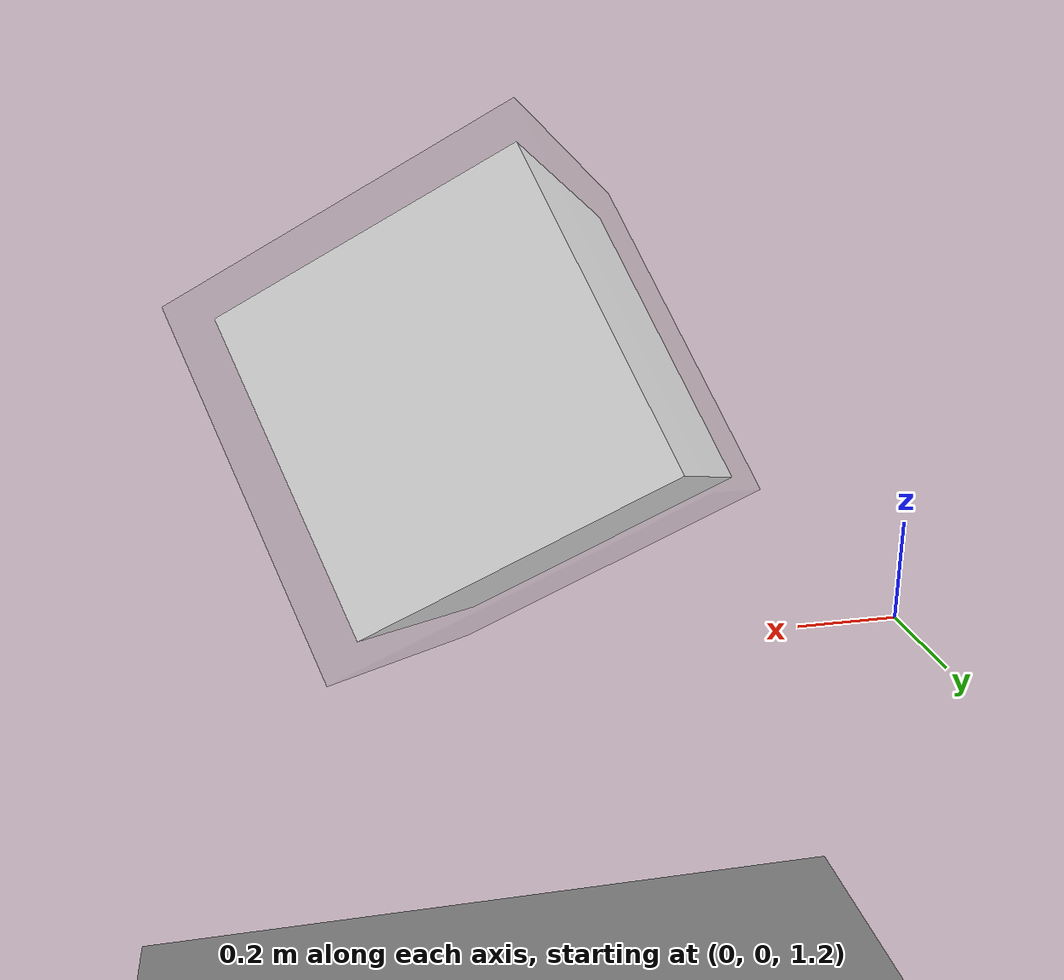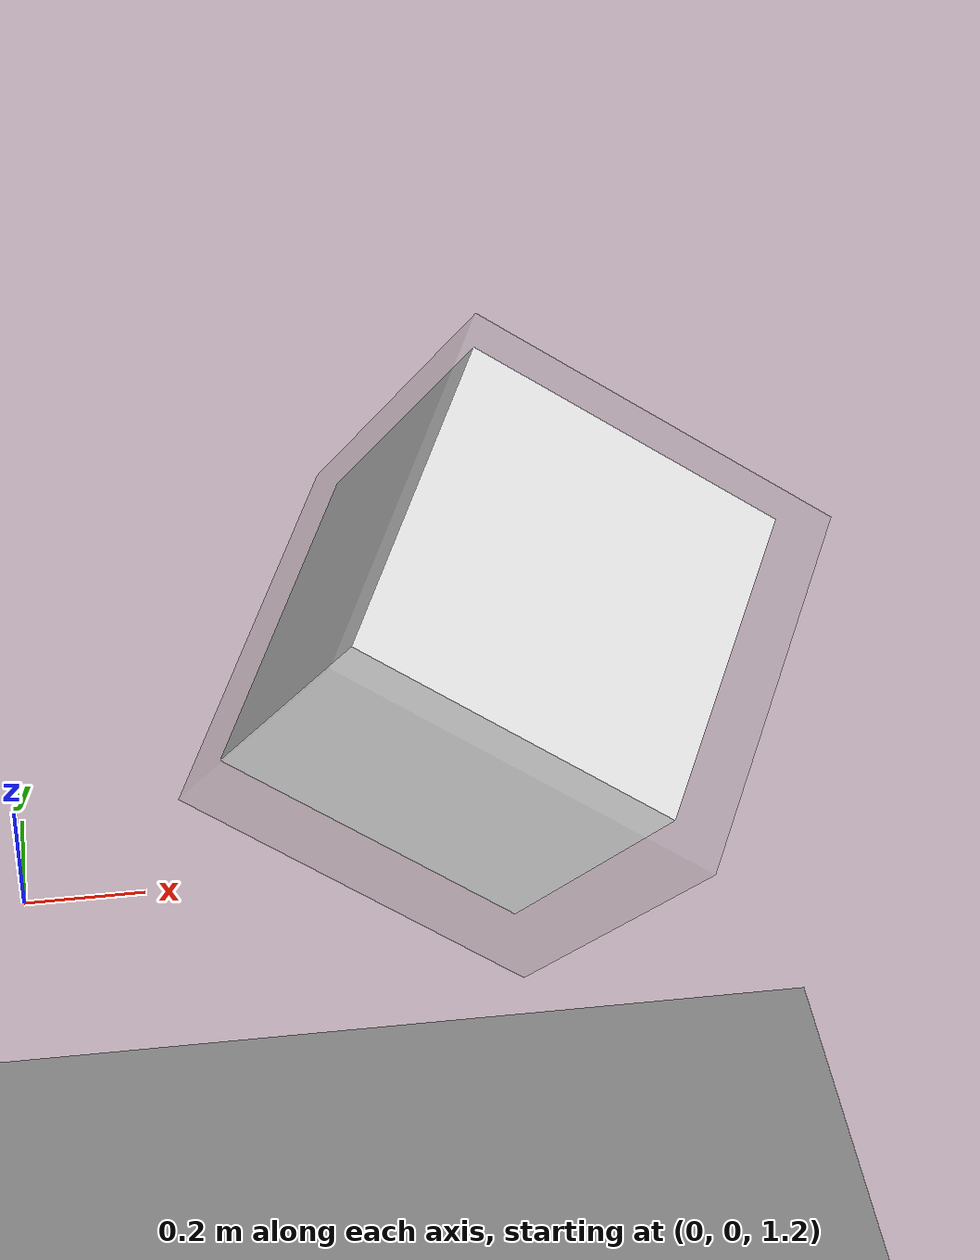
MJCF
<?xml version="1.0" ?>
<mujoco model="demo">
    <compiler angle="radian" coordinate="local"/>
    <option timestep="0.002" iterations="100" integrator="Euler" cone="pyramidal" jacobian="dense" solver="Newton">
        <flag/>
    </option>
    <size nconmax="-1" njmax="-1" nuserdata="100"/>
    <asset>
        <mesh name="mesh_Cube" file="mesh_stl/Cube.stl"/>
    </asset>
    <worldbody>
        <body name="Cube" pos="0.7852574586868286 -2.2607137850627623e-07 1.6825940608978271" quat="0.7834741473197937 0.3197202980518341 -6.656769357960002e-08 0.5328670144081116">
            <geom name="Cube" type="mesh" pos="0 0 0" quat="1 0 0 0" rgba="1.0 1.0 1.0 1.0" mass="0" contype="0" conaffinity="0" mesh="mesh_Cube"/>
            <geom name="Empty.001" type="box" size="0.3260466754436493 0.3260466754436493 0.3260466754436493 " pos="-0.02896071970462799 -0.018129168078303337 0.006864670664072037" quat="1.0 -8.569226217503001e-09 2.8564086651527987e-09 0.0" mass="1.0" rgba="0.5 0.5 0.5 0.1" contype="1" conaffinity="1"/>
            <joint name="world_root.001" type="free" axis="0.4321056008338928 -0.8349750638008118 0.34073665738105774" pos="0.2905007600784302 0.295293390750885 -0.9065101146697998" stiffness="0.0" damping="0.0" springref="0.0"/>
        </body>
        <geom name="Empty" type="plane" size="10.558019638061523 10.558019638061523 0.04851973056793213 " pos="0.0 0.0 0.0" quat="1.0 0.0 0.0 0.0" mass="1.0" rgba="0.5 0.5 0.5 0.1" contype="1" conaffinity="1"/>
        <light directional="true" cutoff="4" exponent="20" diffuse="1 1 1" specular="0 0 0" pos="0.9 0.3 2.5" dir="-0.9 -0.3 -2.5"/>
    </worldbody>
    <actuator/>
    <equality/>
    <sensor/>
</mujoco>
